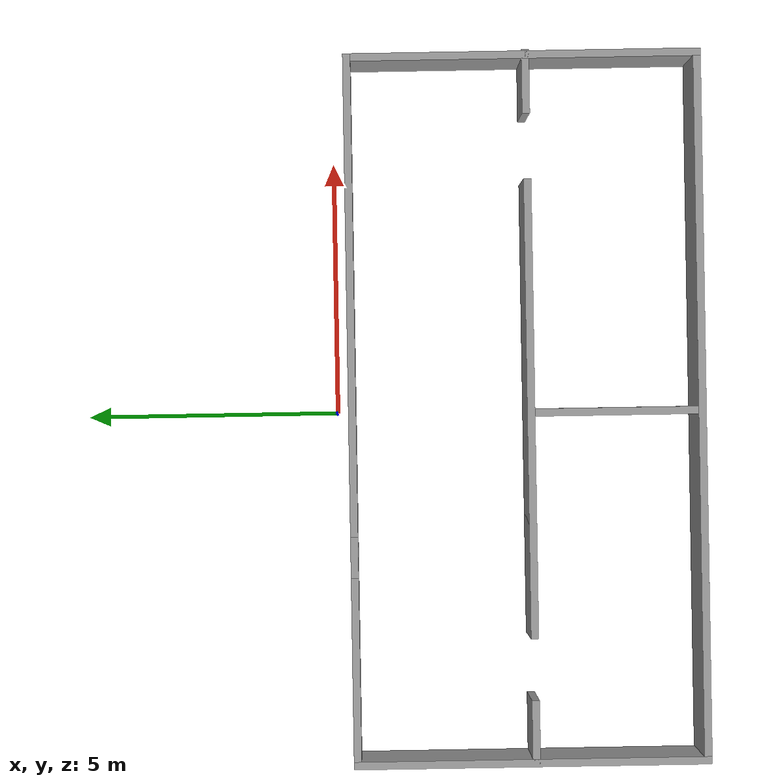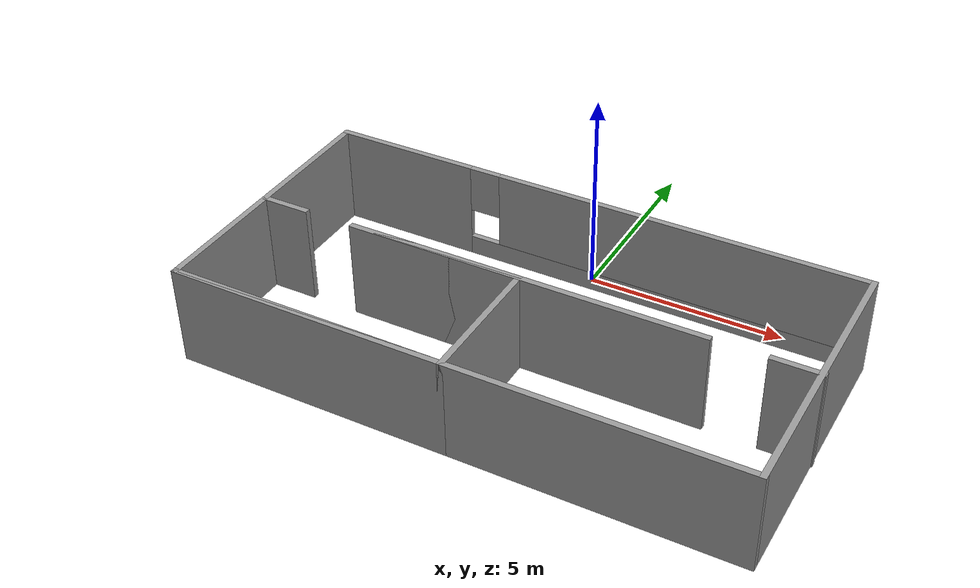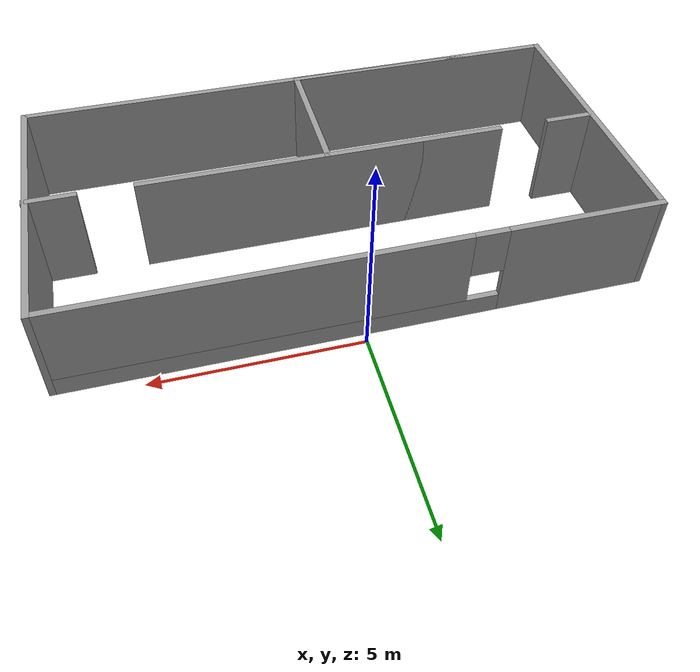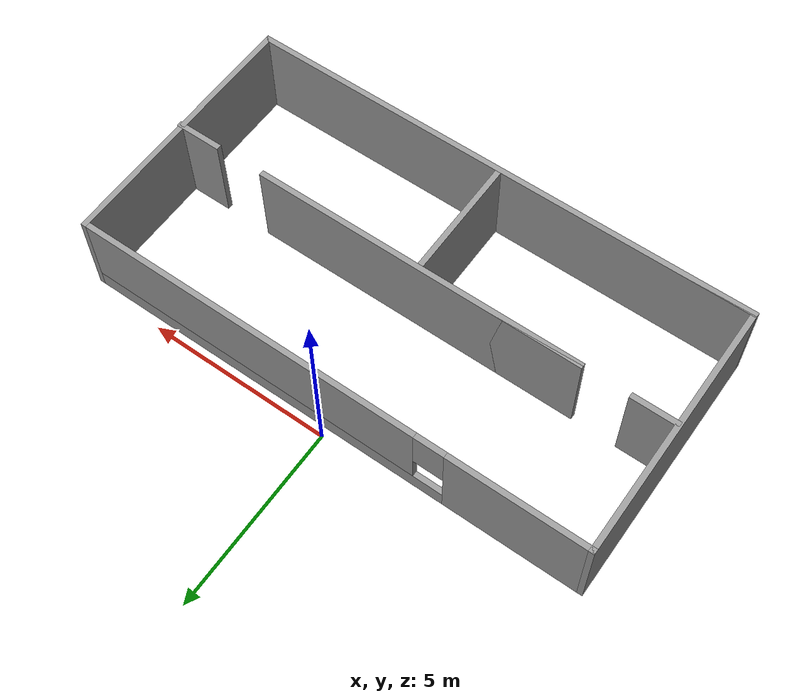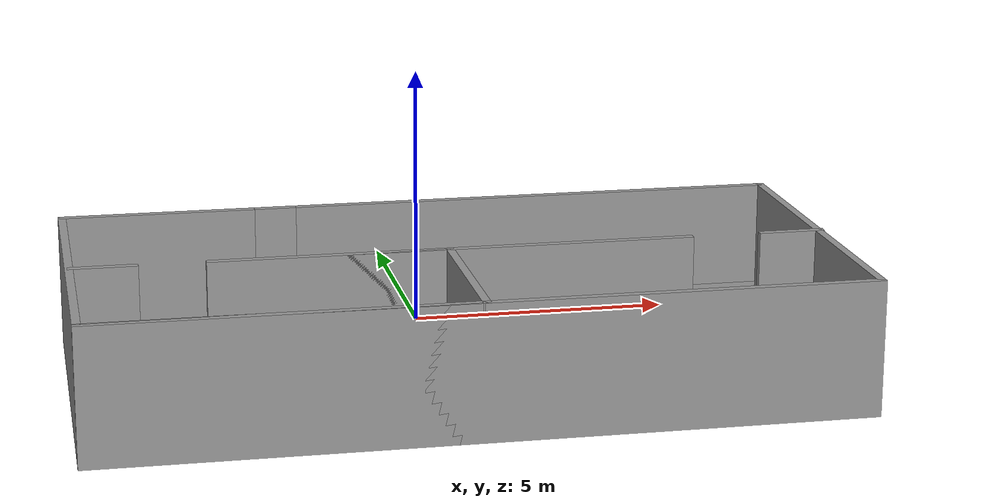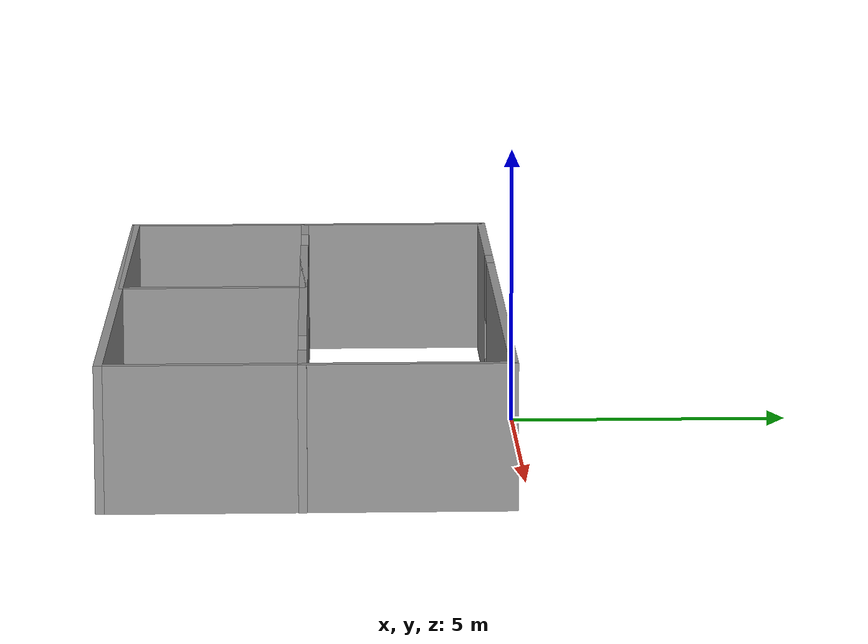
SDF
<?xml version='1.0'?>
<sdf version='1.7'>
  <model name='simple'>
    <pose>0.049695 -3.60942 0 0 -0 0</pose>
    <link name='Wall_10'>
      <collision name='Wall_10_Collision'>
        <geometry>
          <box>
            <size>9 0.15 2.5</size>
          </box>
        </geometry>
        <pose>0 0 1.25 0 -0 0</pose>
      </collision>
      <visual name='Wall_10_Visual'>
        <pose>0 0 1.25 0 -0 0</pose>
        <geometry>
          <box>
            <size>9 0.15 2.5</size>
          </box>
        </geometry>
        <material>
          <script>
            <uri>file://media/materials/scripts/gazebo.material</uri>
            <name>Gazebo/Grey</name>
          </script>
          <ambient>1 1 1 1</ambient>
        </material>
        <meta>
          <layer>0</layer>
        </meta>
      </visual>
      <pose>-0.014182 -0.184417 0 0 -0 0</pose>
    </link>
    <link name='Wall_17'>
      <collision name='Wall_17_Collision'>
        <geometry>
          <box>
            <size>1.25 0.15 2.5</size>
          </box>
        </geometry>
        <pose>0 0 1.25 0 -0 0</pose>
      </collision>
      <visual name='Wall_17_Visual'>
        <pose>0 0 1.25 0 -0 0</pose>
        <geometry>
          <box>
            <size>1.25 0.15 2.5</size>
          </box>
        </geometry>
        <material>
          <script>
            <uri>file://media/materials/scripts/gazebo.material</uri>
            <name>Gazebo/Grey</name>
          </script>
          <ambient>1 1 1 1</ambient>
        </material>
        <meta>
          <layer>0</layer>
        </meta>
      </visual>
      <pose>-6.34292 -0.180479 0 0 -0 0</pose>
    </link>
    <link name='Wall_2'>
      <collision name='Wall_2_Collision'>
        <geometry>
          <box>
            <size>7 0.15 2.5</size>
          </box>
        </geometry>
        <pose>0 0 1.25 0 -0 0</pose>
      </collision>
      <visual name='Wall_2_Visual'>
        <pose>0 0 1.25 0 -0 0</pose>
        <geometry>
          <box>
            <size>7 0.15 2.5</size>
          </box>
        </geometry>
        <material>
          <script>
            <uri>file://media/materials/scripts/gazebo.material</uri>
            <name>Gazebo/Grey</name>
          </script>
          <ambient>1 1 1 1</ambient>
        </material>
        <meta>
          <layer>0</layer>
        </meta>
      </visual>
      <pose>-6.93918 -0.109417 0 0 -0 1.5708</pose>
    </link>
    <link name='Wall_20'>
      <collision name='Wall_20_Collision'>
        <geometry>
          <box>
            <size>1.25 0.15 2.5</size>
          </box>
        </geometry>
        <pose>0 0 1.25 0 -0 0</pose>
      </collision>
      <visual name='Wall_20_Visual'>
        <pose>0 0 1.25 0 -0 0</pose>
        <geometry>
          <box>
            <size>1.25 0.15 2.5</size>
          </box>
        </geometry>
        <material>
          <script>
            <uri>file://media/materials/scripts/gazebo.material</uri>
            <name>Gazebo/Grey</name>
          </script>
          <ambient>1 1 1 1</ambient>
        </material>
        <meta>
          <layer>0</layer>
        </meta>
      </visual>
      <pose>6.38918 -0.180479 0 0 -0 3.14159</pose>
    </link>
    <link name='Wall_3'>
      <pose>-0.014182 3.31558 0 0 -0 0</pose>
      <visual name='Wall_3_Visual_0'>
        <pose>-5.12701 0 1.25 0 -0 0</pose>
        <geometry>
          <box>
            <size>3.74599 0.15 2.5</size>
          </box>
        </geometry>
        <material>
          <script>
            <uri>file://media/materials/scripts/gazebo.material</uri>
            <name>Gazebo/Grey</name>
          </script>
          <ambient>1 1 1 1</ambient>
        </material>
        <meta>
          <layer>0</layer>
        </meta>
      </visual>
      <collision name='Wall_3_Collision_0'>
        <geometry>
          <box>
            <size>3.74599 0.15 2.5</size>
          </box>
        </geometry>
        <pose>-5.12701 0 1.25 0 -0 0</pose>
      </collision>
      <visual name='Wall_3_Visual_1'>
        <pose>1.87299 0 0.25 0 -0 0</pose>
        <geometry>
          <box>
            <size>10.254 0.15 0.5</size>
          </box>
        </geometry>
        <material>
          <script>
            <uri>file://media/materials/scripts/gazebo.material</uri>
            <name>Gazebo/Grey</name>
          </script>
          <ambient>1 1 1 1</ambient>
        </material>
        <meta>
          <layer>0</layer>
        </meta>
      </visual>
      <collision name='Wall_3_Collision_1'>
        <geometry>
          <box>
            <size>10.254 0.15 0.5</size>
          </box>
        </geometry>
        <pose>1.87299 0 0.25 0 -0 0</pose>
      </collision>
      <visual name='Wall_3_Visual_2'>
        <pose>2.27299 0 1.5 0 -0 0</pose>
        <geometry>
          <box>
            <size>9.45401 0.15 2</size>
          </box>
        </geometry>
        <material>
          <script>
            <uri>file://media/materials/scripts/gazebo.material</uri>
            <name>Gazebo/Grey</name>
          </script>
          <ambient>1 1 1 1</ambient>
        </material>
        <meta>
          <layer>0</layer>
        </meta>
      </visual>
      <collision name='Wall_3_Collision_2'>
        <geometry>
          <box>
            <size>9.45401 0.15 2</size>
          </box>
        </geometry>
        <pose>2.27299 0 1.5 0 -0 0</pose>
      </collision>
      <visual name='Wall_3_Visual_3'>
        <pose>-2.85401 0 1.9 0 -0 0</pose>
        <geometry>
          <box>
            <size>0.8 0.15 1.2</size>
          </box>
        </geometry>
        <material>
          <script>
            <uri>file://media/materials/scripts/gazebo.material</uri>
            <name>Gazebo/Grey</name>
          </script>
          <ambient>1 1 1 1</ambient>
        </material>
        <meta>
          <layer>0</layer>
        </meta>
      </visual>
      <collision name='Wall_3_Collision_3'>
        <geometry>
          <box>
            <size>0.8 0.15 1.2</size>
          </box>
        </geometry>
        <pose>-2.85401 0 1.9 0 -0 0</pose>
      </collision>
    </link>
    <link name='Wall_4'>
      <collision name='Wall_4_Collision'>
        <geometry>
          <box>
            <size>7 0.15 2.5</size>
          </box>
        </geometry>
        <pose>0 0 1.25 0 -0 0</pose>
      </collision>
      <visual name='Wall_4_Visual'>
        <pose>0 0 1.25 0 -0 0</pose>
        <geometry>
          <box>
            <size>7 0.15 2.5</size>
          </box>
        </geometry>
        <material>
          <script>
            <uri>file://media/materials/scripts/gazebo.material</uri>
            <name>Gazebo/Grey</name>
          </script>
          <ambient>1 1 1 1</ambient>
        </material>
        <meta>
          <layer>0</layer>
        </meta>
      </visual>
      <pose>6.91082 -0.109417 0 0 -0 -1.5708</pose>
    </link>
    <link name='Wall_5'>
      <collision name='Wall_5_Collision'>
        <geometry>
          <box>
            <size>14 0.15 2.5</size>
          </box>
        </geometry>
        <pose>0 0 1.25 0 -0 0</pose>
      </collision>
      <visual name='Wall_5_Visual'>
        <pose>0 0 1.25 0 -0 0</pose>
        <geometry>
          <box>
            <size>14 0.15 2.5</size>
          </box>
        </geometry>
        <material>
          <script>
            <uri>file://media/materials/scripts/gazebo.material</uri>
            <name>Gazebo/Grey</name>
          </script>
          <ambient>1 1 1 1</ambient>
        </material>
        <meta>
          <layer>0</layer>
        </meta>
      </visual>
      <pose>-0.014182 -3.53442 0 0 -0 3.14159</pose>
    </link>
    <link name='Wall_7'>
      <collision name='Wall_7_Collision'>
        <geometry>
          <box>
            <size>7 0.15 2.5</size>
          </box>
        </geometry>
        <pose>0 0 1.25 0 -0 0</pose>
      </collision>
      <visual name='Wall_7_Visual'>
        <pose>0 0 1.25 0 -0 0</pose>
        <geometry>
          <box>
            <size>7 0.15 2.5</size>
          </box>
        </geometry>
        <material>
          <script>
            <uri>file://media/materials/scripts/gazebo.material</uri>
            <name>Gazebo/Grey</name>
          </script>
          <ambient>1 1 1 1</ambient>
        </material>
        <meta>
          <layer>0</layer>
        </meta>
      </visual>
      <pose>-3.51418 -3.53442 0 0 -0 0</pose>
    </link>
    <link name='Wall_8'>
      <collision name='Wall_8_Collision'>
        <geometry>
          <box>
            <size>3.5 0.15 2.5</size>
          </box>
        </geometry>
        <pose>0 0 1.25 0 -0 0</pose>
      </collision>
      <visual name='Wall_8_Visual'>
        <pose>0 0 1.25 0 -0 0</pose>
        <geometry>
          <box>
            <size>3.5 0.15 2.5</size>
          </box>
        </geometry>
        <material>
          <script>
            <uri>file://media/materials/scripts/gazebo.material</uri>
            <name>Gazebo/Grey</name>
          </script>
          <ambient>1 1 1 1</ambient>
        </material>
        <meta>
          <layer>0</layer>
        </meta>
      </visual>
      <pose>-0.089182 -1.85942 0 0 -0 1.5708</pose>
    </link>
    <link name='Wall_9'>
      <collision name='Wall_9_Collision'>
        <geometry>
          <box>
            <size>4.5 0.15 2.5</size>
          </box>
        </geometry>
        <pose>0 0 1.25 0 -0 0</pose>
      </collision>
      <visual name='Wall_9_Visual'>
        <pose>0 0 1.25 0 -0 0</pose>
        <geometry>
          <box>
            <size>4.5 0.15 2.5</size>
          </box>
        </geometry>
        <material>
          <script>
            <uri>file://media/materials/scripts/gazebo.material</uri>
            <name>Gazebo/Grey</name>
          </script>
          <ambient>1 1 1 1</ambient>
        </material>
        <meta>
          <layer>0</layer>
        </meta>
      </visual>
      <pose>-2.26418 -0.184417 0 0 -0 3.14159</pose>
    </link>
    <static>1</static>
  </model>
</sdf>
